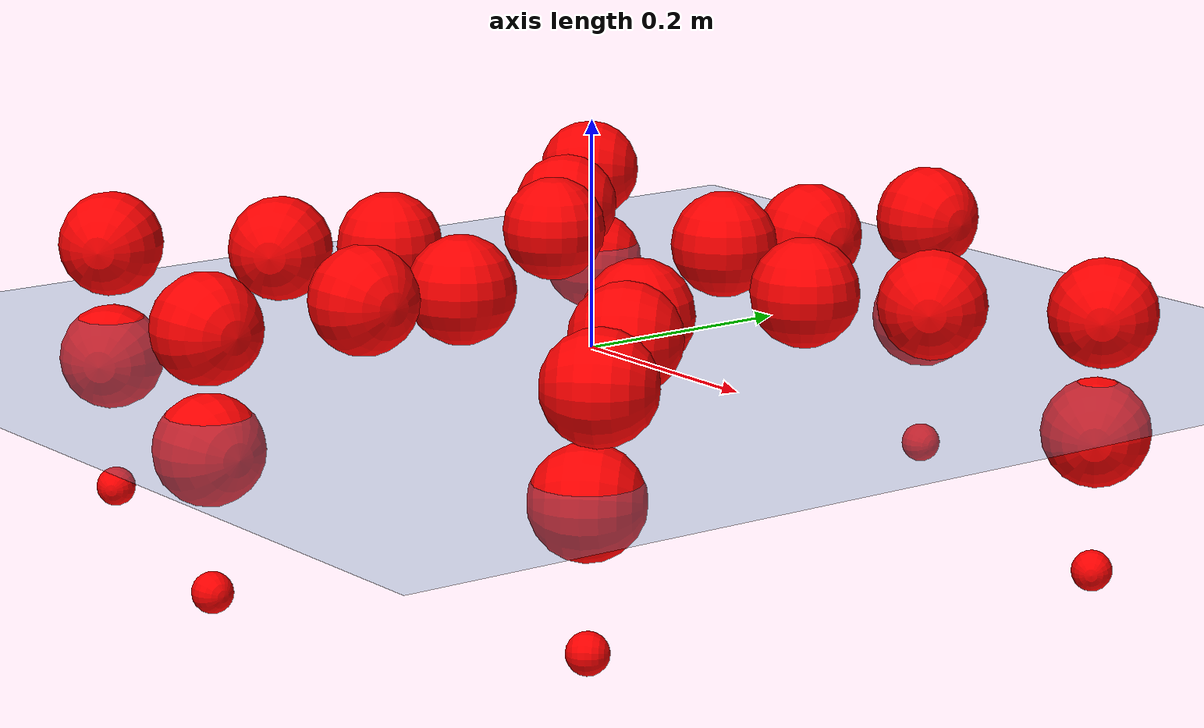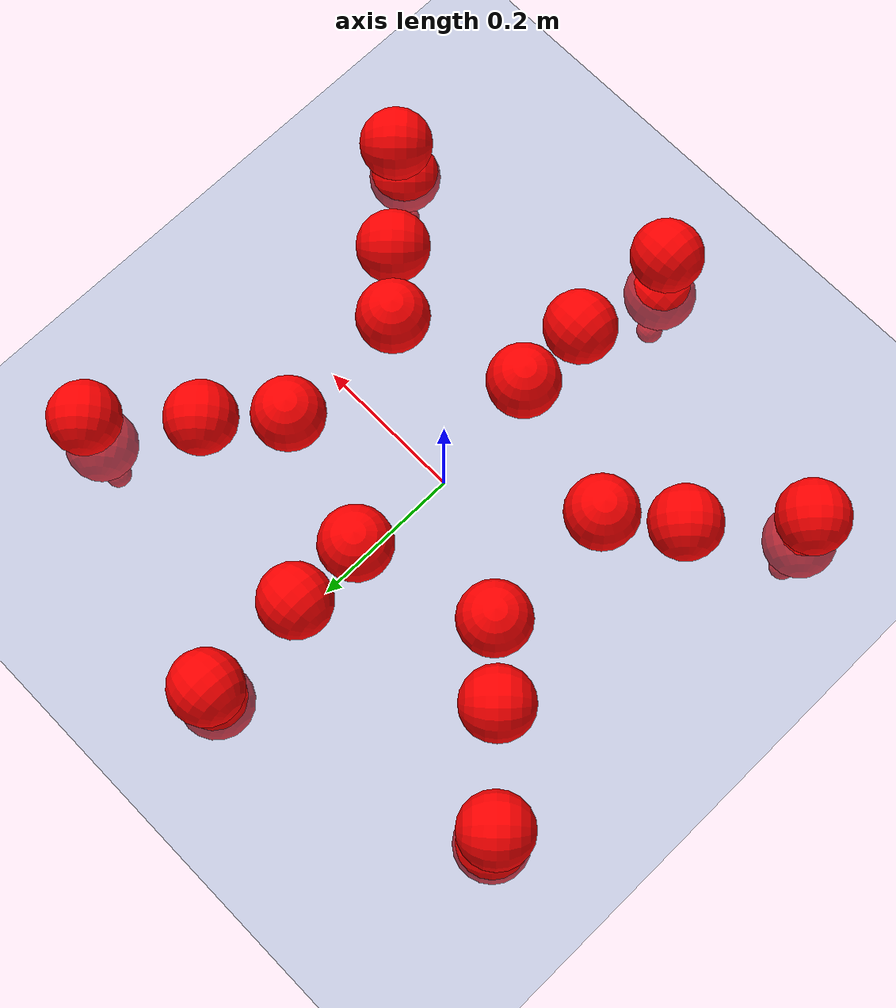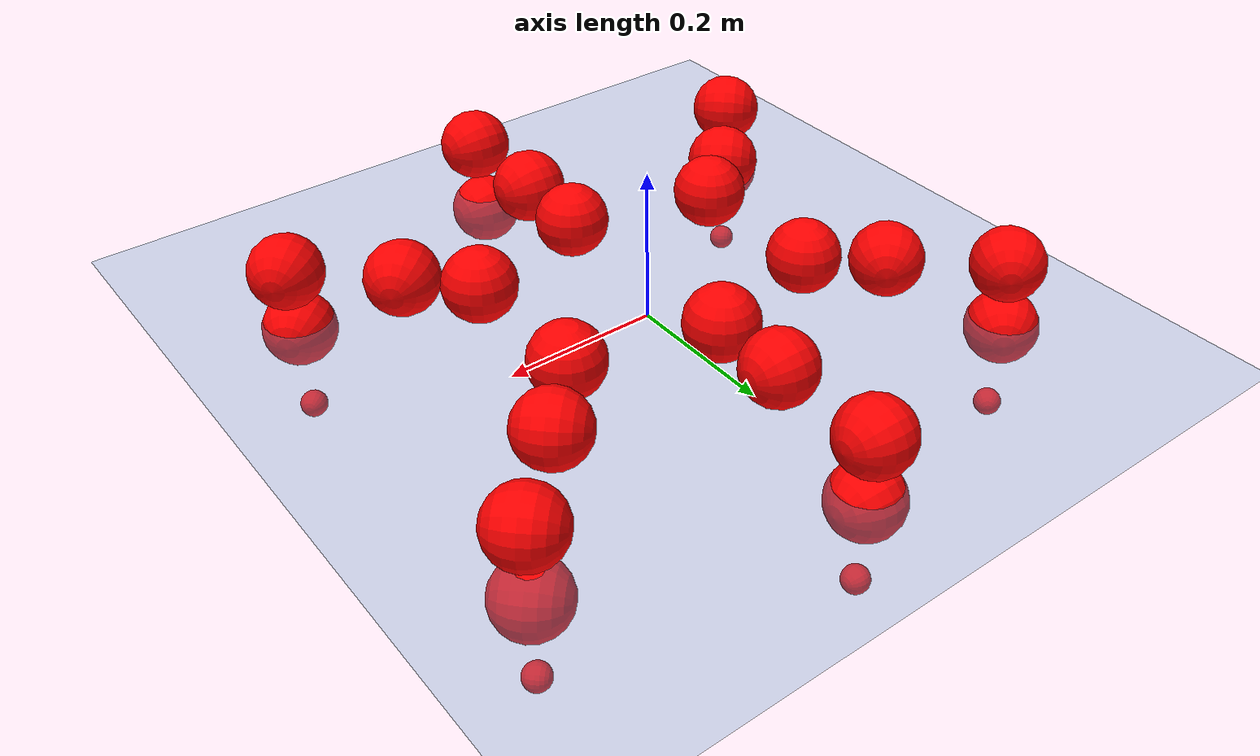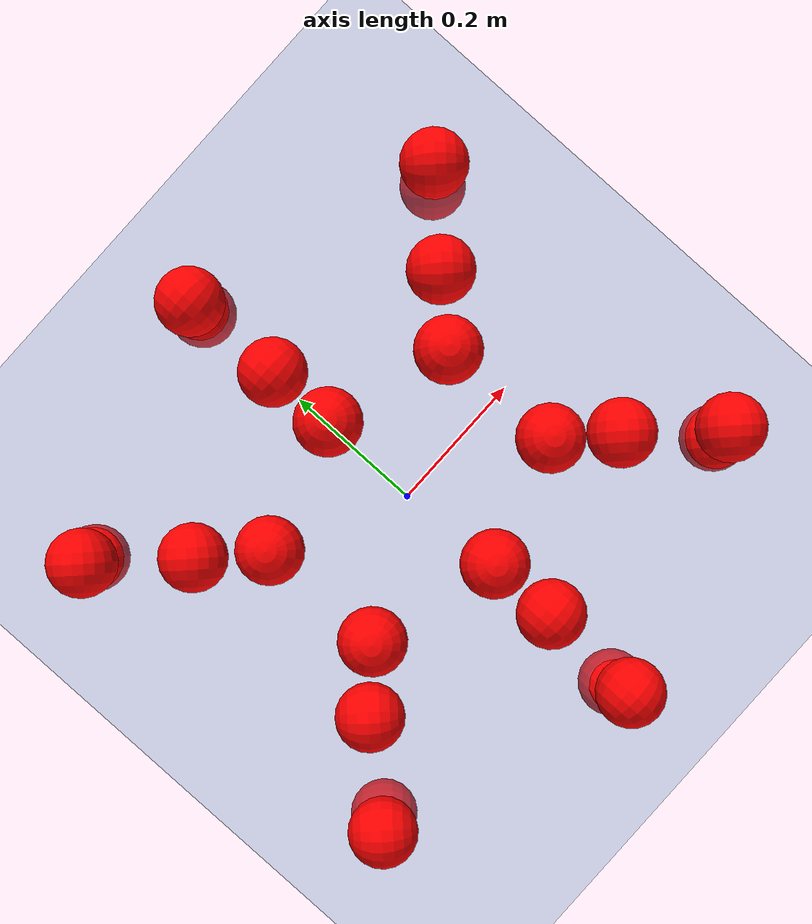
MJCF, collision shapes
<mujoco model="Golem">
  <compiler angle="radian" assetdir="assets" balanceinertia="true" inertiafromgeom="false"/>

  <option timestep="0.005" density="1.2" viscosity="2e-05"/>

  <size nkey="1"/>

  <visual>
    <quality shadowsize="8192"/>
    <map shadowclip="0.5"/>
  </visual>

  <default>
    <default class="/">
      <joint armature="0.01" damping="0.01" frictionloss="0.01"/>
      <geom contype="0" conaffinity="0" group="1" solref="-1000 -80"/>
      <site size="0.01 0.005 0.005" group="5"/>
      <general forcelimited="true" biastype="affine" gainprm="25" biasprm="0 -25 -0.5"/>
      <default class="visual">
        <geom type="mesh" group="2"/>
      </default>
      <default class="collision">
        <geom group="3"/>
      </default>
      <default class="foot">
        <geom size="0.01 0 0" condim="6" group="4" priority="1" solimp="0.015 1 0.01"/>
      </default>
      <default class="reward_collision_sphere">
        <geom group="5" rgba="1 0 0 1"/>
      </default>
    </default>
  </default>

  <asset>
    <texture type="skybox" colorspace="auto" name="//unnamed_texture_0" builtin="gradient" rgb1="0.95 0.95 0.95" rgb2="0.95 0.95 0.95" width="100" height="600"/>
    <texture type="2d" colorspace="auto" name="texplane" builtin="checker" rgb1="0.345 0.575 0.748" rgb2="0.345 0.575 0.748" markrgb="1 1 1" width="512" height="512"/>
    <material name="MatPlane" class="/" texture="texplane" texuniform="true" texrepeat="2 2" specular="0.9"/>
    <mesh name="body" class="/" file="body.stl" scale="0.001 0.001 0.001"/>
    <mesh name="coxa" class="/" file="coxa.stl" scale="0.001 0.001 0.001"/>
    <mesh name="femur" class="/" file="femur.stl" scale="0.001 0.001 0.001"/>
    <mesh name="tibia" class="/" file="tibia.stl" scale="0.001 0.001 0.001"/>
    <mesh name="tarsus" class="/" file="tarsus.stl" scale="0.001 0.001 0.001"/>
  </asset>

  <worldbody>
    <geom name="floor" class="/" size="100 100 0.125" type="plane" group="0" material="MatPlane"/>
    <light name="toplight_shadow" class="/" pos="0 0 5" dir="0.0990148 0.0990148 -0.990148" type="directional" ambient="0.04 0.04 0.04" diffuse="0.55 0.55 0.55" specular="0.12 0.12 0.12"/>
    <light name="toplight_fill" class="/" pos="0 0 5" dir="0.0990148 0.0990148 -0.990148" type="directional" castshadow="false" ambient="0.04 0.04 0.04" diffuse="0.3 0.3 0.3" specular="0.08 0.08 0.08"/>
    <body name="trunk" pos="0.00346728 -0.000572199 0.00170485" quat="1 -0.000886514 -0.000235716 -1.34092e-05">
      <inertial pos="-0.00171389 -0.000817892 0.00653679" quat="0.999375 -0.00923923 -0.033482 0.00650595" mass="5.92696" diaginertia="0.0183139 0.0445624 0.0125265"/>
      <joint name="//unnamed_joint_0" type="free"/>
      <geom name="//unnamed_geom_1" class="/" pos="0 0 0.0670882" quat="1 0 0 0" type="mesh" rgba="0.9 0.9 0.9 1" mesh="body"/>
      <site name="imu" class="/" pos="0.140879 -0.00110121 0.11148" size="0.0117396"/>
      <camera name="track" class="/" pos="0 -2.69006 0" quat="0.707107 0.707107 0 0" mode="trackcom"/>
      <camera name="ego_camera" class="/" pos="0.146716 0 0.104825" quat="-0.5 -0.5 0.5 0.5"/>
      <body name="coxa_RR" pos="-0.200998 -0.116464 0.0714315" quat="0.382082 0.000212406 -0.000142199 -0.924128">
        <inertial pos="0.00022518 -0.000284607 0.000883503" quat="0.99989 -0.00157597 0.0138792 0.00497309" mass="0.338287" diaginertia="0.0178896 0.0453618 0.0132283"/>
        <joint name="coxa_joint_RR" class="/" pos="0 0 0" axis="-0.0103898 0.00655738 -0.999925" range="-3.12058 2.99889" armature="0.0124464" damping="0" frictionloss="0.0130513"/>
        <geom name="//unnamed_geom_2" class="/" type="mesh" rgba="0.2 0.2 0.2 1" mesh="coxa"/>
        <geom name="//unnamed_geom_3" class="reward_collision_sphere" size="0.0469582" pos="-0.0338576 0 0"/>
        <body name="femur_RR" pos="0.0667599 -0.0089227 -0.00830151" quat="0.499462 -0.499574 0.500016 0.500946">
          <inertial pos="0.000299704 -0.00687577 -0.0083242" quat="0.99997 -0.00680875 -0.00371438 -0.000126131" mass="0.323616" diaginertia="0.0177404 0.045074 0.0118323"/>
          <joint name="femur_joint_RR" class="/" pos="0 0 0" axis="0.00549501 0.000330494 -0.999985" range="-3.10399 3.15146" armature="0.0119921" damping="0" frictionloss="0.00675956"/>
          <geom name="//unnamed_geom_4" class="/" type="mesh" rgba="0.9 0.9 0.9 1" mesh="femur"/>
          <geom name="//unnamed_geom_5" class="reward_collision_sphere" size="0.0469582"/>
          <body name="tibia_RR" pos="-0.00183925 -0.152539 0.00859382" quat="0.000972004 0.999999 -9.70832e-05 -0.000682344">
            <inertial pos="-0.00208378 0.00753645 -0.00277262" quat="0.999942 -0.00931635 -0.00357002 -0.00405255" mass="0.319122" diaginertia="0.0187476 0.0446785 0.0126375"/>
            <joint name="tibia_joint_RR" class="/" pos="0 0 0" axis="-0.00194191 -0.00690947 0.999974" stiffness="0.00311325" range="-3.14131 3.15133" armature="0.0130647" damping="0" frictionloss="0.0134339"/>
            <geom name="//unnamed_geom_6" class="/" type="mesh" rgba="0.2 0.2 0.2 1" mesh="tibia"/>
            <geom name="//unnamed_geom_7" class="reward_collision_sphere" size="0.0469582"/>
            <body name="tarsus_RR" pos="0.10363 0.00219325 0.000545426" quat="0.999999 0.000431351 -0.00089175 -0.000635112">
              <inertial pos="0.0706864 0.00352893 -0.00126259" quat="0.500742 0.491304 0.502203 0.505638" mass="0.314649" diaginertia="0.0172299 0.0446139 0.0132741"/>
              <joint name="tarsus_joint_RR" class="/" pos="0 0 0" axis="-0.00247367 0.00384442 0.99999" range="-2.97532 2.96486" armature="0.0130556" damping="0" frictionloss="0.0126705"/>
              <geom name="//unnamed_geom_8" class="/" type="mesh" rgba="0.9 0.9 0.9 1" mesh="tarsus"/>
              <geom name="foot_1" class="foot" size="0.0103582" pos="0.126402 0 0" quat="0 -0.707107 0 0.707107"/>
              <geom name="//unnamed_geom_10" class="reward_collision_sphere" size="0.0469582"/>
              <geom name="//unnamed_geom_11" class="reward_collision_sphere" size="0.0176093" pos="0.121323 0 0"/>
              <site name="foot_1" class="foot" pos="0.126402 0 0" quat="0 -0.707107 0 0.707107" size="0.0117396"/>
            </body>
          </body>
        </body>
      </body>
      <body name="coxa_RM" pos="0.00689159 -0.178575 0.0706551" quat="0.707011 -8.91172e-05 0.000536332 -0.707202">
        <inertial pos="0.00246229 0.00244259 0.00265264" quat="0.999237 -0.0362122 0.00479712 0.0138155" mass="0.309909" diaginertia="0.0173128 0.0438017 0.0116087"/>
        <joint name="coxa_joint_RM" class="/" pos="0 0 0" axis="-0.000977786 0.00404355 -0.999991" range="-3.16831 3.17481" armature="0.0118826" damping="0.0197158" frictionloss="0.0105156"/>
        <geom name="//unnamed_geom_12" class="/" type="mesh" rgba="0.2 0.2 0.2 1" mesh="coxa"/>
        <geom name="//unnamed_geom_13" class="reward_collision_sphere" size="0.0469582" pos="-0.0338576 0 0"/>
        <body name="femur_RM" pos="0.0647832 0.000220652 0.00419512" quat="0.499573 -0.499517 0.498172 0.502726">
          <inertial pos="0.00717588 0.00211988 0.00852572" quat="0.999943 0.00205947 0.00429748 0.00955541" mass="0.301936" diaginertia="0.0178944 0.0443731 0.0125136"/>
          <joint name="femur_joint_RM" class="/" pos="0 0 0" axis="0.00549732 0.00690657 -0.999961" range="-3.118 3.00172" armature="0.0116661" damping="0.0221292" frictionloss="0.0154247"/>
          <geom name="//unnamed_geom_14" class="/" type="mesh" rgba="0.9 0.9 0.9 1" mesh="femur"/>
          <geom name="//unnamed_geom_15" class="reward_collision_sphere" size="0.0469582"/>
          <body name="tibia_RM" pos="0.00428161 -0.147585 -0.00834985" quat="-0.000658897 1 0.000311238 -0.000132759">
            <inertial pos="0.00148151 0.000979553 -0.00187715" quat="1 0.000119004 0.000285384 0.000253915" mass="0.33082" diaginertia="0.0174251 0.0425652 0.0129322"/>
            <joint name="tibia_joint_RM" class="/" pos="0 0 0" axis="0.0231947 -0.0258716 0.999396" range="-3.14469 3.25454" armature="0.0105467" damping="0.0145625" frictionloss="0.0111437"/>
            <geom name="//unnamed_geom_16" class="/" type="mesh" rgba="0.2 0.2 0.2 1" mesh="tibia"/>
            <geom name="//unnamed_geom_17" class="reward_collision_sphere" size="0.0469582"/>
            <body name="tarsus_RM" pos="0.103267 -0.00375766 0.00686938" quat="0.999999 -0.000106072 0.000163562 0.00103017">
              <inertial pos="0.0666314 0.0016306 -0.00342608" quat="0.513938 0.488667 0.507071 0.489849" mass="0.321611" diaginertia="0.0176986 0.0442366 0.0139625"/>
              <joint name="tarsus_joint_RM" class="/" pos="0 0 0" axis="-0.000271586 -0.000679637 1" stiffness="0.00957902" range="-3.02022 3.28955" armature="0.0121908" damping="0" frictionloss="0.0111005"/>
              <geom name="//unnamed_geom_18" class="/" type="mesh" rgba="0.9 0.9 0.9 1" mesh="tarsus"/>
              <geom name="foot_2" class="foot" size="0.0118489" pos="0.126402 0 0" quat="0 -0.707107 0 0.707107"/>
              <geom name="//unnamed_geom_20" class="reward_collision_sphere" size="0.0469582"/>
              <geom name="//unnamed_geom_21" class="reward_collision_sphere" size="0.0176093" pos="0.121323 0 0"/>
              <site name="foot_2" class="foot" pos="0.126402 0 0" quat="0 -0.707107 0 0.707107" size="0.0117396"/>
            </body>
          </body>
        </body>
      </body>
      <body name="coxa_RF" pos="0.203189 -0.112747 0.0728954" quat="0.923956 0.000521571 0.00095273 -0.382497">
        <inertial pos="-2.80201e-06 0.00929665 0.00147019" quat="0.999994 -0.000629844 0.000809985 0.00316443" mass="0.310811" diaginertia="0.0177215 0.0436246 0.0125275"/>
        <joint name="coxa_joint_RF" class="/" pos="0 0 0" axis="0.000490029 -0.00057625 -1" range="-3.13771 3.06355" armature="0.010518" damping="0.0269332" frictionloss="0.0113462"/>
        <geom name="//unnamed_geom_22" class="/" type="mesh" rgba="0.2 0.2 0.2 1" mesh="coxa"/>
        <geom name="//unnamed_geom_23" class="reward_collision_sphere" size="0.0469582" pos="-0.0338576 0 0"/>
        <body name="femur_RF" pos="0.0595006 0.00156015 0.00212217" quat="0.499806 -0.500549 0.499135 0.500509">
          <inertial pos="0.00225563 -0.000176582 -0.00483217" quat="0.999991 -0.00215122 -0.000293418 -0.00365384" mass="0.332239" diaginertia="0.0181093 0.047411 0.0120562"/>
          <joint name="femur_joint_RF" class="/" pos="0 0 0" axis="-0.000305651 -0.00615084 -0.999981" stiffness="0.00185292" range="-3.27795 3.16465" armature="0.0118034" damping="0.0129944" frictionloss="0.0141855"/>
          <geom name="//unnamed_geom_24" class="/" type="mesh" rgba="0.9 0.9 0.9 1" mesh="femur"/>
          <geom name="//unnamed_geom_25" class="reward_collision_sphere" size="0.0469582"/>
          <body name="tibia_RF" pos="0.00385817 -0.144899 -0.00117269" quat="-0.000630622 1 3.1012e-05 0.000120992">
            <inertial pos="-0.00351627 0.00157297 0.000306939" quat="0.999234 0.0131043 -0.0359796 0.00811477" mass="0.30225" diaginertia="0.0188612 0.0449232 0.0124771"/>
            <joint name="tibia_joint_RF" class="/" pos="0 0 0" axis="-0.00815616 -0.0216162 0.999733" range="-3.13491 3.14333" armature="0.0127227" damping="0" frictionloss="0.0104825"/>
            <geom name="//unnamed_geom_26" class="/" type="mesh" rgba="0.2 0.2 0.2 1" mesh="tibia"/>
            <geom name="//unnamed_geom_27" class="reward_collision_sphere" size="0.0469582"/>
            <body name="tarsus_RF" pos="0.0909374 -0.000264658 0.0093529" quat="0.999999 0.000649262 0.000849876 -9.34105e-05">
              <inertial pos="0.0672297 0.00578582 0.00033658" quat="0.500488 0.501263 0.499409 0.498837" mass="0.356793" diaginertia="0.0184367 0.0471405 0.0124777"/>
              <joint name="tarsus_joint_RF" class="/" pos="0 0 0" axis="-0.0104179 0.0239485 0.999659" range="-3.05142 3.13956" armature="0.0120227" damping="0" frictionloss="0.0113632"/>
              <geom name="//unnamed_geom_28" class="/" type="mesh" rgba="0.9 0.9 0.9 1" mesh="tarsus"/>
              <geom name="foot_3" class="foot" size="0.0124093" pos="0.126402 0 0" quat="0 -0.707107 0 0.707107"/>
              <geom name="//unnamed_geom_30" class="reward_collision_sphere" size="0.0469582"/>
              <geom name="//unnamed_geom_31" class="reward_collision_sphere" size="0.0176093" pos="0.121323 0 0"/>
              <site name="foot_3" class="foot" pos="0.126402 0 0" quat="0 -0.707107 0 0.707107" size="0.0117396"/>
            </body>
          </body>
        </body>
      </body>
      <body name="coxa_LR" pos="-0.202407 0.112862 0.0634157" quat="0.382832 0.000674749 0.000157291 0.923818">
        <inertial pos="-0.00123568 -0.00120524 -0.00561073" quat="0.999942 -0.0084006 0.00338624 0.00582898" mass="0.320676" diaginertia="0.0182663 0.0429259 0.0138384"/>
        <joint name="coxa_joint_LR" class="/" pos="0 0 0" axis="0.00165069 -0.013411 -0.999909" stiffness="0.0203087" range="-3.11269 3.14331" armature="0.0120485" damping="0.0417386" frictionloss="0.0160067"/>
        <geom name="//unnamed_geom_32" class="/" type="mesh" rgba="0.2 0.2 0.2 1" mesh="coxa"/>
        <geom name="//unnamed_geom_33" class="reward_collision_sphere" size="0.0469582" pos="-0.0338576 0 0"/>
        <body name="femur_LR" pos="0.0674347 0.00363303 0.00202979" quat="0.499832 -0.499469 0.500166 0.500532">
          <inertial pos="-0.00634762 0.000726235 -0.00402816" quat="1 4.12354e-05 -2.2856e-05 2.5418e-05" mass="0.354324" diaginertia="0.0175704 0.0431785 0.0121413"/>
          <joint name="femur_joint_LR" class="/" pos="0 0 0" axis="-0.0130304 -0.0102614 0.999862" range="-2.97383 3.27595" armature="0.0159222" damping="0.023938" frictionloss="0.0124884"/>
          <geom name="//unnamed_geom_34" class="/" type="mesh" rgba="0.9 0.9 0.9 1" mesh="femur"/>
          <geom name="//unnamed_geom_35" class="reward_collision_sphere" size="0.0469582"/>
          <body name="tibia_LR" pos="-0.00585735 -0.145754 -0.0012609" quat="-0.000249415 1 -0.000210061 0.000827745">
            <inertial pos="-0.00186524 0.00441173 0.000640099" quat="1 0.000435377 -0.000421057 -0.00016181" mass="0.29819" diaginertia="0.0182168 0.0401617 0.0128536"/>
            <joint name="tibia_joint_LR" class="/" pos="0 0 0" axis="-0.00822906 0.0285837 -0.999558" stiffness="0.0107843" range="-3.09518 3.24948" armature="0.0118041" damping="0" frictionloss="0.0121894"/>
            <geom name="//unnamed_geom_36" class="/" type="mesh" rgba="0.2 0.2 0.2 1" mesh="tibia"/>
            <geom name="//unnamed_geom_37" class="reward_collision_sphere" size="0.0469582"/>
            <body name="tarsus_LR" pos="0.0909143 0.0051345 0.0031324" quat="0.999994 -0.00160953 -0.00291471 0.00105504">
              <inertial pos="0.0731337 0.00510412 -0.000886047" quat="0.500599 0.501415 0.499709 0.498271" mass="0.322851" diaginertia="0.0177122 0.046302 0.0119768"/>
              <joint name="tarsus_joint_LR" class="/" pos="0 0 0" axis="0.000129498 1.04503e-05 -1" stiffness="0.0151351" range="-3.17252 3.18058" armature="0.0113633" damping="0.0283779" frictionloss="0.00807563"/>
              <geom name="//unnamed_geom_38" class="/" type="mesh" rgba="0.9 0.9 0.9 1" mesh="tarsus"/>
              <geom name="foot_4" class="foot" size="0.0127261" pos="0.126402 0 0" quat="0.707107 0 -0.707107 0"/>
              <geom name="//unnamed_geom_40" class="reward_collision_sphere" size="0.0469582"/>
              <geom name="//unnamed_geom_41" class="reward_collision_sphere" size="0.0176093" pos="0.121323 0 0"/>
              <site name="foot_4" class="foot" pos="0.126402 0 0" quat="0.707107 0 -0.707107 0" size="0.0117396"/>
            </body>
          </body>
        </body>
      </body>
      <body name="coxa_LM" pos="8.28147e-06 0.177847 0.0723522" quat="0.706949 0.000617546 -0.000102696 0.707264">
        <inertial pos="-0.0059642 0.000326208 0.000424733" quat="1 6.52653e-05 3.34366e-05 7.97313e-05" mass="0.346413" diaginertia="0.0174913 0.047109 0.0134135"/>
        <joint name="coxa_joint_LM" class="/" pos="0 0 0" axis="0.0153137 -3.53799e-05 -0.999883" range="-3.09691 3.12848" armature="0.0125382" damping="0.0146991" frictionloss="0.0132885"/>
        <geom name="//unnamed_geom_42" class="/" type="mesh" rgba="0.2 0.2 0.2 1" mesh="coxa"/>
        <geom name="//unnamed_geom_43" class="reward_collision_sphere" size="0.0469582" pos="-0.0338576 0 0"/>
        <body name="femur_LM" pos="0.0647525 -0.000318621 -0.00470584" quat="0.5 -0.500002 0.500004 0.499994">
          <inertial pos="-0.00305614 -0.00077103 0.00189493" quat="0.999998 -0.00067771 -0.000545766 -0.00178406" mass="0.308998" diaginertia="0.0194447 0.0409282 0.0112202"/>
          <joint name="femur_joint_LM" class="/" pos="0 0 0" axis="-0.0373373 -0.0014226 0.999302" stiffness="0.0149117" range="-3.28165 3.16179" armature="0.0106972" damping="0.0519717" frictionloss="0.0116927"/>
          <geom name="//unnamed_geom_44" class="/" type="mesh" rgba="0.9 0.9 0.9 1" mesh="femur"/>
          <geom name="//unnamed_geom_45" class="reward_collision_sphere" size="0.0469582"/>
          <body name="tibia_LM" pos="0.00211953 -0.144074 0.00323769" quat="-2.40323e-05 1 -9.98245e-05 -9.78882e-06">
            <inertial pos="0.00713422 0.000311862 -0.000522664" quat="0.999998 -0.00024455 -0.00102328 0.00152204" mass="0.338751" diaginertia="0.0188589 0.0462167 0.0126141"/>
            <joint name="tibia_joint_LM" class="/" pos="0 0 0" axis="-0.000887904 -0.00191505 -0.999998" range="-3.1232 3.16142" armature="0.0139044" damping="0" frictionloss="0.0170799"/>
            <geom name="//unnamed_geom_46" class="/" type="mesh" rgba="0.2 0.2 0.2 1" mesh="tibia"/>
            <geom name="//unnamed_geom_47" class="reward_collision_sphere" size="0.0469582"/>
            <body name="tarsus_LM" pos="0.0920296 -0.00241618 -0.000398112" quat="1 0.000221669 -7.19578e-06 -0.000103147">
              <inertial pos="0.072537 0.00112761 0.00293058" quat="0.476131 0.506318 0.511453 0.505329" mass="0.325059" diaginertia="0.0190981 0.0439926 0.0131408"/>
              <joint name="tarsus_joint_LM" class="/" pos="0 0 0" axis="0.0055086 0.00936273 -0.999941" range="-3.22755 3.1412" armature="0.0119308" damping="0" frictionloss="0.0130074"/>
              <geom name="//unnamed_geom_48" class="/" type="mesh" rgba="0.9 0.9 0.9 1" mesh="tarsus"/>
              <geom name="foot_5" class="foot" size="0.00771014" pos="0.126402 0 0" quat="0.707107 0 -0.707107 0"/>
              <geom name="//unnamed_geom_50" class="reward_collision_sphere" size="0.0469582"/>
              <geom name="//unnamed_geom_51" class="reward_collision_sphere" size="0.0176093" pos="0.121323 0 0"/>
              <site name="foot_5" class="foot" pos="0.126402 0 0" quat="0.707107 0 -0.707107 0" size="0.0117396"/>
            </body>
          </body>
        </body>
      </body>
      <body name="coxa_LF" pos="0.20114 0.113216 0.0676039" quat="0.923844 -0.000101525 -0.000165416 0.382769">
        <inertial pos="0.000528783 0.00819124 0.00156326" quat="0.999516 -0.0111871 0.0184268 0.022451" mass="0.291175" diaginertia="0.0159609 0.0385445 0.0110485"/>
        <joint name="coxa_joint_LF" class="/" pos="0 0 0" axis="0.00186633 -0.0134653 -0.999908" stiffness="0.0202421" range="-3.22135 3.13869" armature="0.0107927" damping="0" frictionloss="0.0148466"/>
        <geom name="//unnamed_geom_52" class="/" type="mesh" rgba="0.2 0.2 0.2 1" mesh="coxa"/>
        <geom name="//unnamed_geom_53" class="reward_collision_sphere" size="0.0469582" pos="-0.0338576 0 0"/>
        <body name="femur_LF" pos="0.0735329 0.00355886 -0.00780364" quat="0.499988 -0.500276 0.500058 0.499677">
          <inertial pos="0.000710932 -0.00312929 0.00602777" quat="0.999982 0.00445136 0.00284359 -0.00278177" mass="0.31152" diaginertia="0.0177722 0.0428252 0.0129533"/>
          <joint name="femur_joint_LF" class="/" pos="0 0 0" axis="0.00271552 0.00375767 0.999989" stiffness="0.0459331" range="-3.16698 3.14772" armature="0.00992214" damping="0.0251751" frictionloss="0.0121046"/>
          <geom name="//unnamed_geom_54" class="/" type="mesh" rgba="0.9 0.9 0.9 1" mesh="femur"/>
          <geom name="//unnamed_geom_55" class="reward_collision_sphere" size="0.0469582"/>
          <body name="tibia_LF" pos="0.00270624 -0.142623 0.000855562" quat="0.000729451 1 0.000170017 0.000308155">
            <inertial pos="-0.00705156 -0.00707612 -0.00864285" quat="0.999999 2.44101e-05 -0.000302589 0.00107738" mass="0.330267" diaginertia="0.0191776 0.0432649 0.0115494"/>
            <joint name="tibia_joint_LF" class="/" pos="0 0 0" axis="-0.000178245 0.0033414 -0.999994" range="-3.20981 3.27996" armature="0.0108676" damping="0.0169468" frictionloss="0.0135052"/>
            <geom name="//unnamed_geom_56" class="/" type="mesh" rgba="0.2 0.2 0.2 1" mesh="tibia"/>
            <geom name="//unnamed_geom_57" class="reward_collision_sphere" size="0.0469582"/>
            <body name="tarsus_LF" pos="0.103031 -0.003143 -9.10098e-05" quat="1 -1.2803e-05 -4.04267e-05 -9.1163e-05">
              <inertial pos="0.0710923 -0.000353767 -0.0070046" quat="0.51305 0.489218 0.512609 0.484435" mass="0.330478" diaginertia="0.0172308 0.0449297 0.0115409"/>
              <joint name="tarsus_joint_LF" class="/" pos="0 0 0" axis="-0.000277761 0.000805672 -1" range="-3.02973 3.28719" armature="0.0104037" damping="0.0194202" frictionloss="0.0104668"/>
              <geom name="//unnamed_geom_58" class="/" type="mesh" rgba="0.9 0.9 0.9 1" mesh="tarsus"/>
              <geom name="foot_6" class="foot" size="0.0103295" pos="0.126402 0 0" quat="0.707107 0 -0.707107 0"/>
              <geom name="//unnamed_geom_60" class="reward_collision_sphere" size="0.0469582"/>
              <geom name="//unnamed_geom_61" class="reward_collision_sphere" size="0.0176093" pos="0.121323 0 0"/>
              <site name="foot_6" class="foot" pos="0.126402 0 0" quat="0.707107 0 -0.707107 0" size="0.0117396"/>
            </body>
          </body>
        </body>
      </body>
    </body>
  </worldbody>

  <contact>
    <pair class="/" geom1="floor" geom2="foot_1" name="//unnamed_contact_0"/>
    <pair class="/" geom1="floor" geom2="foot_2" name="//unnamed_contact_1"/>
    <pair class="/" geom1="floor" geom2="foot_3" name="//unnamed_contact_2"/>
    <pair class="/" geom1="floor" geom2="foot_4" name="//unnamed_contact_3"/>
    <pair class="/" geom1="floor" geom2="foot_5" name="//unnamed_contact_4"/>
    <pair class="/" geom1="floor" geom2="foot_6" name="//unnamed_contact_5"/>
  </contact>

  <actuator>
    <general name="coxa_joint_RR" class="/" joint="coxa_joint_RR" forcerange="-8.14082 8.14082" gainprm="23.0185" biasprm="0 -23.0185 -0.572174"/>
    <general name="femur_joint_RR" class="/" joint="femur_joint_RR" forcerange="-8.89333 8.89333" gainprm="23.0185" biasprm="0 -23.0185 -0.572174"/>
    <general name="tibia_joint_RR" class="/" joint="tibia_joint_RR" forcerange="-8.46871 8.46871" gainprm="23.0185" biasprm="0 -23.0185 -0.572174"/>
    <general name="tarsus_joint_RR" class="/" joint="tarsus_joint_RR" forcerange="-9.26378 9.26378" gainprm="23.0185" biasprm="0 -23.0185 -0.572174"/>
    <general name="coxa_joint_RM" class="/" joint="coxa_joint_RM" forcerange="-7.87629 7.87629" gainprm="23.0185" biasprm="0 -23.0185 -0.572174"/>
    <general name="femur_joint_RM" class="/" joint="femur_joint_RM" forcerange="-8.90133 8.90133" gainprm="23.0185" biasprm="0 -23.0185 -0.572174"/>
    <general name="tibia_joint_RM" class="/" joint="tibia_joint_RM" forcerange="-8.7934 8.7934" gainprm="23.0185" biasprm="0 -23.0185 -0.572174"/>
    <general name="tarsus_joint_RM" class="/" joint="tarsus_joint_RM" forcerange="-9.97236 9.97236" gainprm="23.0185" biasprm="0 -23.0185 -0.572174"/>
    <general name="coxa_joint_RF" class="/" joint="coxa_joint_RF" forcerange="-7.89695 7.89695" gainprm="23.0185" biasprm="0 -23.0185 -0.572174"/>
    <general name="femur_joint_RF" class="/" joint="femur_joint_RF" forcerange="-8.46848 8.46848" gainprm="23.0185" biasprm="0 -23.0185 -0.572174"/>
    <general name="tibia_joint_RF" class="/" joint="tibia_joint_RF" forcerange="-8.38373 8.38373" gainprm="23.0185" biasprm="0 -23.0185 -0.572174"/>
    <general name="tarsus_joint_RF" class="/" joint="tarsus_joint_RF" forcerange="-8.216 8.216" gainprm="23.0185" biasprm="0 -23.0185 -0.572174"/>
    <general name="coxa_joint_LR" class="/" joint="coxa_joint_LR" forcerange="-8.54389 8.54389" gainprm="23.0185" biasprm="0 -23.0185 -0.572174"/>
    <general name="femur_joint_LR" class="/" joint="femur_joint_LR" forcerange="-10.3846 10.3846" gainprm="23.0185" biasprm="0 -23.0185 -0.572174"/>
    <general name="tibia_joint_LR" class="/" joint="tibia_joint_LR" forcerange="-9.18639 9.18639" gainprm="23.0185" biasprm="0 -23.0185 -0.572174"/>
    <general name="tarsus_joint_LR" class="/" joint="tarsus_joint_LR" forcerange="-8.47574 8.47574" gainprm="23.0185" biasprm="0 -23.0185 -0.572174"/>
    <general name="coxa_joint_LM" class="/" joint="coxa_joint_LM" forcerange="-8.17054 8.17054" gainprm="23.0185" biasprm="0 -23.0185 -0.572174"/>
    <general name="femur_joint_LM" class="/" joint="femur_joint_LM" forcerange="-9.00129 9.00129" gainprm="23.0185" biasprm="0 -23.0185 -0.572174"/>
    <general name="tibia_joint_LM" class="/" joint="tibia_joint_LM" forcerange="-8.48342 8.48342" gainprm="23.0185" biasprm="0 -23.0185 -0.572174"/>
    <general name="tarsus_joint_LM" class="/" joint="tarsus_joint_LM" forcerange="-7.80602 7.80602" gainprm="23.0185" biasprm="0 -23.0185 -0.572174"/>
    <general name="coxa_joint_LF" class="/" joint="coxa_joint_LF" forcerange="-8.4037 8.4037" gainprm="23.0185" biasprm="0 -23.0185 -0.572174"/>
    <general name="femur_joint_LF" class="/" joint="femur_joint_LF" forcerange="-7.28125 7.28125" gainprm="23.0185" biasprm="0 -23.0185 -0.572174"/>
    <general name="tibia_joint_LF" class="/" joint="tibia_joint_LF" forcerange="-8.64235 8.64235" gainprm="23.0185" biasprm="0 -23.0185 -0.572174"/>
    <general name="tarsus_joint_LF" class="/" joint="tarsus_joint_LF" forcerange="-11.4501 11.4501" gainprm="23.0185" biasprm="0 -23.0185 -0.572174"/>
  </actuator>

  <sensor>
    <gyro site="imu" name="imu_angular_velocity"/>
    <velocimeter site="imu" name="imu_linear_velocity"/>
    <framelinvel objtype="site" objname="foot_1" name="foot_1_global_linear_velocity"/>
    <framelinvel objtype="site" objname="foot_2" name="foot_2_global_linear_velocity"/>
    <framelinvel objtype="site" objname="foot_3" name="foot_3_global_linear_velocity"/>
    <framelinvel objtype="site" objname="foot_4" name="foot_4_global_linear_velocity"/>
    <framelinvel objtype="site" objname="foot_5" name="foot_5_global_linear_velocity"/>
    <framelinvel objtype="site" objname="foot_6" name="foot_6_global_linear_velocity"/>
  </sensor>

  <keyframe>
    <key name="home" qpos="0 0 0.1457 1 0 0 0 0 0 0 0 0 0 0 0 0 0 0 0 0 0 0 0 0 0 0 0 0 0 0 0"/>
  </keyframe>
</mujoco>
